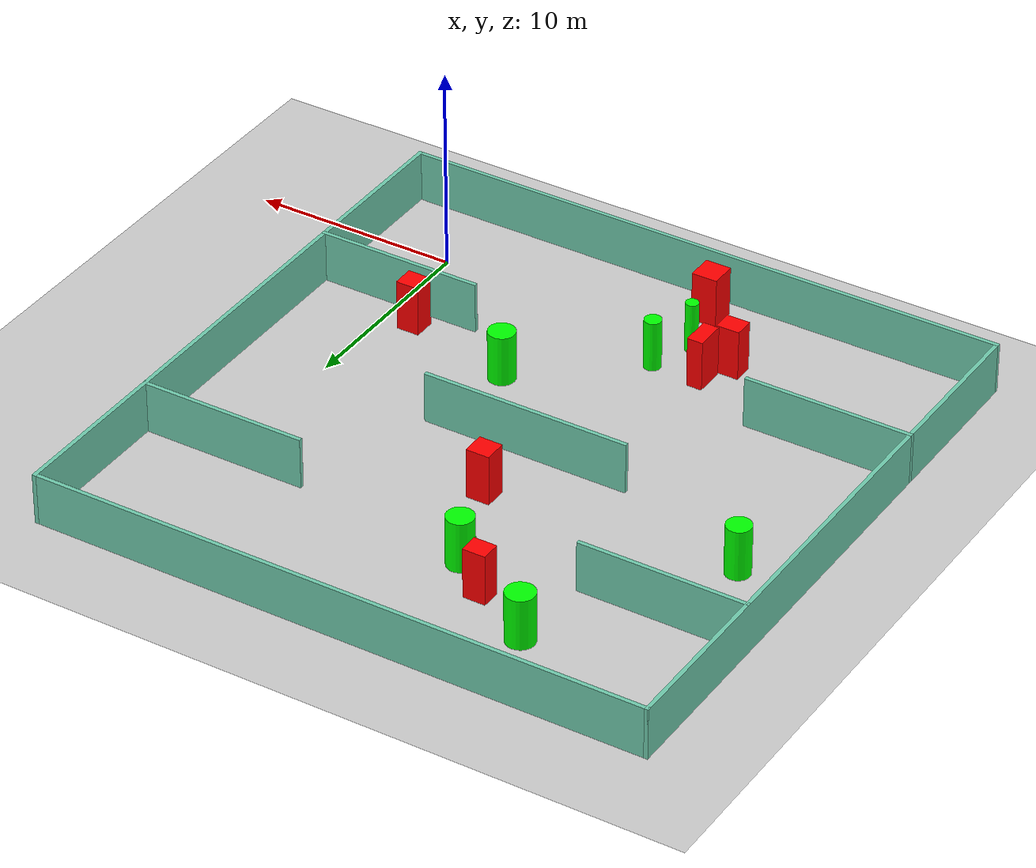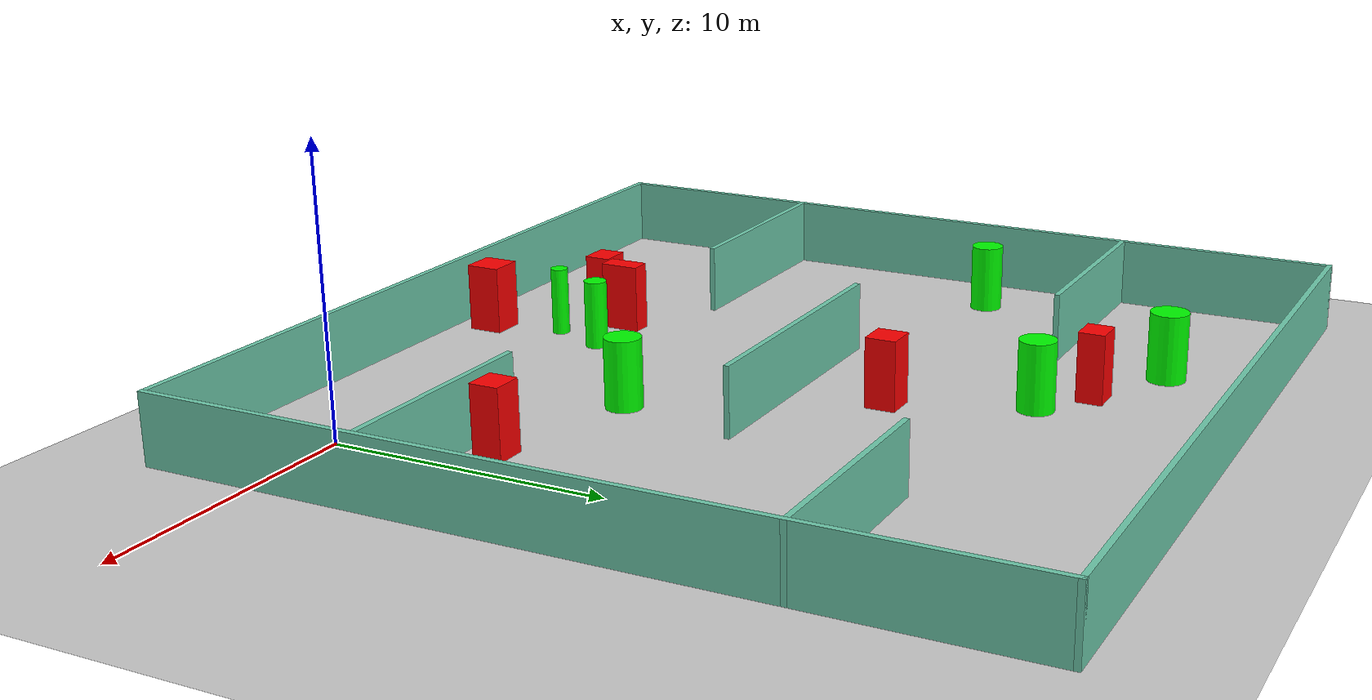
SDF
<sdf version="1.7">
 <world name="default">
  <light name="sun" type="directional">
   <pose>0 0 10 0 -0 0</pose>
   <diffuse>0.8 0.8 0.8 1</diffuse>
   <specular>0.2 0.2 0.2 1</specular>
   <attenuation>
    <range>1000</range>
    <constant>0.9</constant>
    <linear>0.01</linear>
    <quadratic>0.001</quadratic>
   </attenuation>
   <direction>-0.5 0.1 -0.9</direction>
   <spot><inner_angle>0</inner_angle><outer_angle>0</outer_angle><falloff>0</falloff></spot>
  </light>
  <model name="ground_plane">
   <static>1</static>
   <link name="link">
    <collision name="collision">
     <geometry><plane><normal>0 0 1</normal><size>100 100</size></plane></geometry>
     <surface>
      <contact><collide_bitmask>65535</collide_bitmask></contact>
      <friction><ode><mu>100</mu><mu2>50</mu2></ode></friction>
     </surface>
    </collision>
    <visual name="visual">
     <cast_shadows>0</cast_shadows>
     <geometry><plane><normal>0 0 1</normal><size>100 100</size></plane></geometry>
     <material>
      <script><uri>file://media/materials/scripts/gazebo.material</uri><name>Gazebo/Grey</name></script>
     </material>
    </visual>
   </link>
  </model>
  <gravity>0 0 -9.8</gravity>
  <magnetic_field>6e-06 2.3e-05 -4.2e-05</magnetic_field>
  <atmosphere type="adiabatic"/>
  <physics type="ode">
   <max_step_size>0.001</max_step_size>
   <real_time_factor>1</real_time_factor>
   <real_time_update_rate>1000</real_time_update_rate>
  </physics>
  <scene><ambient>0.4 0.4 0.4 1</ambient><background>0.7 0.7 0.7 1</background><shadows>1</shadows></scene>
  <spherical_coordinates>
   <surface_model>EARTH_WGS84</surface_model>
   <latitude_deg>0</latitude_deg>
   <longitude_deg>0</longitude_deg>
   <elevation>0</elevation>
   <heading_deg>0</heading_deg>
  </spherical_coordinates>
  <model name="my_base_walls">
   <link name="Wall_10">
    <collision name="Wall_10_Collision">
     <geometry><box><size>8.2 0.2 2.5</size></box></geometry>
     <pose>0 0 1.25 0 -0 0</pose>
    </collision>
    <visual name="Wall_10_Visual">
     <pose>0 0 1.25 0 -0 0</pose>
     <geometry><box><size>8.2 0.2 2.5</size></box></geometry>
     <material>
      <script><uri>file://media/materials/scripts/gazebo.material</uri><name>Gazebo/Grey</name></script>
      <ambient>0.435294 0.796078 0.67451 1</ambient>
     </material>
     <meta><layer>0</layer></meta>
    </visual>
    <pose>-11 -7 0 0 -0 0</pose>
   </link>
   <link name="Wall_12">
    <collision name="Wall_12_Collision">
     <geometry><box><size>8.2 0.2 2.5</size></box></geometry>
     <pose>0 0 1.25 0 -0 0</pose>
    </collision>
    <visual name="Wall_12_Visual">
     <pose>0 0 1.25 0 -0 0</pose>
     <geometry><box><size>8.2 0.2 2.5</size></box></geometry>
     <material>
      <script><uri>file://media/materials/scripts/gazebo.material</uri><name>Gazebo/Grey</name></script>
      <ambient>0.435294 0.796078 0.67451 1</ambient>
     </material>
     <meta><layer>0</layer></meta>
    </visual>
    <pose>-11 7 0 0 -0 0</pose>
   </link>
   <link name="Wall_14">
    <collision name="Wall_14_Collision">
     <geometry><box><size>8.2 0.2 2.5</size></box></geometry>
     <pose>0 0 1.25 0 -0 0</pose>
    </collision>
    <visual name="Wall_14_Visual">
     <pose>0 0 1.25 0 -0 0</pose>
     <geometry><box><size>8.2 0.2 2.5</size></box></geometry>
     <material>
      <script><uri>file://media/materials/scripts/gazebo.material</uri><name>Gazebo/Grey</name></script>
      <ambient>0.435294 0.796078 0.67451 1</ambient>
     </material>
     <meta><layer>0</layer></meta>
    </visual>
    <pose>11 7 0 0 -0 3.14159</pose>
   </link>
   <link name="Wall_16">
    <collision name="Wall_16_Collision">
     <geometry><box><size>10.2 0.2 2.5</size></box></geometry>
     <pose>0 0 1.25 0 -0 0</pose>
    </collision>
    <visual name="Wall_16_Visual">
     <pose>0 0 1.25 0 -0 0</pose>
     <geometry><box><size>10.2 0.2 2.5</size></box></geometry>
     <material>
      <script><uri>file://media/materials/scripts/gazebo.material</uri><name>Gazebo/Grey</name></script>
      <ambient>0.435294 0.796078 0.67451 1</ambient>
     </material>
     <meta><layer>0</layer></meta>
    </visual>
    <pose>0 0 0 0 -0 3.14159</pose>
   </link>
   <link name="Wall_2">
    <collision name="Wall_2_Collision">
     <geometry><box><size>30.2 0.2 2.5</size></box></geometry>
     <pose>0 0 1.25 0 -0 0</pose>
    </collision>
    <visual name="Wall_2_Visual">
     <pose>0 0 1.25 0 -0 0</pose>
     <geometry><box><size>30.2 0.2 2.5</size></box></geometry>
     <material>
      <script><uri>file://media/materials/scripts/gazebo.material</uri><name>Gazebo/Grey</name></script>
      <ambient>0.435294 0.796078 0.67451 1</ambient>
     </material>
     <meta><layer>0</layer></meta>
    </visual>
    <pose>0 -15 0 0 -0 3.14159</pose>
   </link>
   <link name="Wall_3">
    <collision name="Wall_3_Collision">
     <geometry><box><size>30.2 0.2 2.5</size></box></geometry>
     <pose>0 0 1.25 0 -0 0</pose>
    </collision>
    <visual name="Wall_3_Visual">
     <pose>0 0 1.25 0 -0 0</pose>
     <geometry><box><size>30.2 0.2 2.5</size></box></geometry>
     <material>
      <script><uri>file://media/materials/scripts/gazebo.material</uri><name>Gazebo/Grey</name></script>
      <ambient>0.435294 0.796078 0.67451 1</ambient>
     </material>
     <meta><layer>0</layer></meta>
    </visual>
    <pose>-15 0 0 0 -0 1.5708</pose>
   </link>
   <link name="Wall_4">
    <collision name="Wall_4_Collision">
     <geometry><box><size>30.2 0.2 2.5</size></box></geometry>
     <pose>0 0 1.25 0 -0 0</pose>
    </collision>
    <visual name="Wall_4_Visual">
     <pose>0 0 1.25 0 -0 0</pose>
     <geometry><box><size>30.2 0.2 2.5</size></box></geometry>
     <material>
      <script><uri>file://media/materials/scripts/gazebo.material</uri><name>Gazebo/Grey</name></script>
      <ambient>0.435294 0.796078 0.67451 1</ambient>
     </material>
     <meta><layer>0</layer></meta>
    </visual>
    <pose>0 15 0 0 -0 0</pose>
   </link>
   <link name="Wall_6">
    <collision name="Wall_6_Collision">
     <geometry><box><size>30.2 0.2 2.5</size></box></geometry>
     <pose>0 0 1.25 0 -0 0</pose>
    </collision>
    <visual name="Wall_6_Visual">
     <pose>0 0 1.25 0 -0 0</pose>
     <geometry><box><size>30.2 0.2 2.5</size></box></geometry>
     <material>
      <script><uri>file://media/materials/scripts/gazebo.material</uri><name>Gazebo/Grey</name></script>
      <ambient>0.435294 0.796078 0.67451 1</ambient>
     </material>
     <meta><layer>0</layer></meta>
    </visual>
    <pose>15 0 0 0 -0 1.5708</pose>
   </link>
   <link name="Wall_8">
    <collision name="Wall_8_Collision">
     <geometry><box><size>8.2 0.2 2.5</size></box></geometry>
     <pose>0 0 1.25 0 -0 0</pose>
    </collision>
    <visual name="Wall_8_Visual">
     <pose>0 0 1.25 0 -0 0</pose>
     <geometry><box><size>8.2 0.2 2.5</size></box></geometry>
     <material>
      <script><uri>file://media/materials/scripts/gazebo.material</uri><name>Gazebo/Grey</name></script>
      <ambient>0.435294 0.796078 0.67451 1</ambient>
     </material>
     <meta><layer>0</layer></meta>
    </visual>
    <pose>11 -7 0 0 -0 3.14159</pose>
   </link>
   <static>1</static>
   <pose>-11 11 0 0 -0 0</pose>
  </model>
  <model name="cylinder1">
   <static>1</static>
   <link name="link">
    <inertial>
     <mass>1</mass>
     <inertia><ixx>0.5</ixx><ixy>0</ixy><ixz>0</ixz><iyy>0.5</iyy><iyz>0</iyz><izz>1</izz></inertia>
    </inertial>
    <collision name="collision">
     <geometry><cylinder><radius>0.5917968435866396</radius><length>2.5</length></cylinder></geometry>
    </collision>
    <visual name="visual">
     <geometry><cylinder><radius>0.5917968435866396</radius><length>2.5</length></cylinder></geometry>
     <material>
      <ambient>0 1 0 1</ambient>
      <diffuse>0 1 0 1</diffuse>
      <specular>0.1 0.1 0.1 1</specular>
      <emissive>0 0 0 0</emissive>
     </material>
    </visual>
   </link>
   <pose>-22.999672846870695 13.467769272342512 1.25 0 0 0</pose>
  </model>
  <model name="cylinder2">
   <static>1</static>
   <link name="link">
    <inertial>
     <mass>1</mass>
     <inertia><ixx>0.5</ixx><ixy>0</ixy><ixz>0</ixz><iyy>0.5</iyy><iyz>0</iyz><izz>1</izz></inertia>
    </inertial>
    <collision name="collision">
     <geometry><cylinder><radius>0.4155279375031602</radius><length>2.5</length></cylinder></geometry>
    </collision>
    <visual name="visual">
     <geometry><cylinder><radius>0.4155279375031602</radius><length>2.5</length></cylinder></geometry>
     <material>
      <ambient>0 1 0 1</ambient>
      <diffuse>0 1 0 1</diffuse>
      <specular>0.1 0.1 0.1 1</specular>
      <emissive>0 0 0 0</emissive>
     </material>
    </visual>
   </link>
   <pose>-12.202772202844871 2.2248365550033826 1.25 0 0 0</pose>
  </model>
  <model name="cylinder3">
   <static>1</static>
   <link name="link">
    <inertial>
     <mass>1</mass>
     <inertia><ixx>0.5</ixx><ixy>0</ixy><ixz>0</ixz><iyy>0.5</iyy><iyz>0</iyz><izz>1</izz></inertia>
    </inertial>
    <collision name="collision">
     <geometry><cylinder><radius>0.6914898012141134</radius><length>2.5</length></cylinder></geometry>
    </collision>
    <visual name="visual">
     <geometry><cylinder><radius>0.6914898012141134</radius><length>2.5</length></cylinder></geometry>
     <material>
      <ambient>0 1 0 1</ambient>
      <diffuse>0 1 0 1</diffuse>
      <specular>0.1 0.1 0.1 1</specular>
      <emissive>0 0 0 0</emissive>
     </material>
    </visual>
   </link>
   <pose>-17.70813368758276 22.178064823019326 1.25 0 0 0</pose>
  </model>
  <model name="cylinder4">
   <static>1</static>
   <link name="link">
    <inertial>
     <mass>1</mass>
     <inertia><ixx>0.5</ixx><ixy>0</ixy><ixz>0</ixz><iyy>0.5</iyy><iyz>0</iyz><izz>1</izz></inertia>
    </inertial>
    <collision name="collision">
     <geometry><cylinder><radius>0.6526278514723627</radius><length>2.5</length></cylinder></geometry>
    </collision>
    <visual name="visual">
     <geometry><cylinder><radius>0.6526278514723627</radius><length>2.5</length></cylinder></geometry>
     <material>
      <ambient>0 1 0 1</ambient>
      <diffuse>0 1 0 1</diffuse>
      <specular>0.1 0.1 0.1 1</specular>
      <emissive>0 0 0 0</emissive>
     </material>
    </visual>
   </link>
   <pose>-12.814458069164573 19.05992292271669 1.25 0 0 0</pose>
  </model>
  <model name="cylinder5">
   <static>1</static>
   <link name="link">
    <inertial>
     <mass>1</mass>
     <inertia><ixx>0.5</ixx><ixy>0</ixy><ixz>0</ixz><iyy>0.5</iyy><iyz>0</iyz><izz>1</izz></inertia>
    </inertial>
    <collision name="collision">
     <geometry><cylinder><radius>0.3166141109252674</radius><length>2.5</length></cylinder></geometry>
    </collision>
    <visual name="visual">
     <geometry><cylinder><radius>0.3166141109252674</radius><length>2.5</length></cylinder></geometry>
     <material>
      <ambient>0 1 0 1</ambient>
      <diffuse>0 1 0 1</diffuse>
      <specular>0.1 0.1 0.1 1</specular>
      <emissive>0 0 0 0</emissive>
     </material>
    </visual>
   </link>
   <pose>-13.000565321164192 0.15334404244751854 1.25 0 0 0</pose>
  </model>
  <model name="cylinder6">
   <static>1</static>
   <link name="link">
    <inertial>
     <mass>1</mass>
     <inertia><ixx>0.5</ixx><ixy>0</ixy><ixz>0</ixz><iyy>0.5</iyy><iyz>0</iyz><izz>1</izz></inertia>
    </inertial>
    <collision name="collision">
     <geometry><cylinder><radius>0.6542619994001058</radius><length>2.5</length></cylinder></geometry>
    </collision>
    <visual name="visual">
     <geometry><cylinder><radius>0.6542619994001058</radius><length>2.5</length></cylinder></geometry>
     <material>
      <ambient>0 1 0 1</ambient>
      <diffuse>0 1 0 1</diffuse>
      <specular>0.1 0.1 0.1 1</specular>
      <emissive>0 0 0 0</emissive>
     </material>
    </visual>
   </link>
   <pose>-7.01512965698533 6.503086352183685 1.25 0 0 0</pose>
  </model>
  <model name="box1">
   <static>1</static>
   <link name="link">
    <inertial>
     <mass>1</mass>
     <inertia><ixx>0.083</ixx><ixy>0</ixy><ixz>0</ixz><iyy>0.083</iyy><iyz>0</iyz><izz>0.083</izz></inertia>
    </inertial>
    <collision name="collision">
     <geometry><box><size>1.1286784410552233 0.9757849514904882 2.5</size></box></geometry>
    </collision>
    <visual name="visual">
     <geometry><box><size>1.1286784410552233 0.9757849514904882 2.5</size></box></geometry>
     <material>
      <ambient>1 0 0 1</ambient>
      <diffuse>1 0 0 1</diffuse>
      <specular>0.1 0.1 0.1 1</specular>
      <emissive>0 0 0 0</emissive>
     </material>
    </visual>
    <sensor name="my_contact" type="contact">
     <contact><collision>box_collision</collision><topic>__default_topic__</topic></contact>
    </sensor>
   </link>
   <pose>-15.389417302817769 0.6808376326604408 1.25 0 0 0</pose>
  </model>
  <model name="box2">
   <static>1</static>
   <link name="link">
    <inertial>
     <mass>1</mass>
     <inertia><ixx>0.083</ixx><ixy>0</ixy><ixz>0</ixz><iyy>0.083</iyy><iyz>0</iyz><izz>0.083</izz></inertia>
    </inertial>
    <collision name="collision">
     <geometry><box><size>1.122194723515416 1.0559192048249195 2.5</size></box></geometry>
    </collision>
    <visual name="visual">
     <geometry><box><size>1.122194723515416 1.0559192048249195 2.5</size></box></geometry>
     <material>
      <ambient>1 0 0 1</ambient>
      <diffuse>1 0 0 1</diffuse>
      <specular>0.1 0.1 0.1 1</specular>
      <emissive>0 0 0 0</emissive>
     </material>
    </visual>
    <sensor name="my_contact" type="contact">
     <contact><collision>box_collision</collision><topic>__default_topic__</topic></contact>
    </sensor>
   </link>
   <pose>-1.5083594692192683 5.138581939835834 1.25 0 0 0</pose>
  </model>
  <model name="box3">
   <static>1</static>
   <link name="link">
    <inertial>
     <mass>1</mass>
     <inertia><ixx>0.083</ixx><ixy>0</ixy><ixz>0</ixz><iyy>0.083</iyy><iyz>0</iyz><izz>0.083</izz></inertia>
    </inertial>
    <collision name="collision">
     <geometry><box><size>1.1053098044262528 0.9467531609693658 2.5</size></box></geometry>
    </collision>
    <visual name="visual">
     <geometry><box><size>1.1053098044262528 0.9467531609693658 2.5</size></box></geometry>
     <material>
      <ambient>1 0 0 1</ambient>
      <diffuse>1 0 0 1</diffuse>
      <specular>0.1 0.1 0.1 1</specular>
      <emissive>0 0 0 0</emissive>
     </material>
    </visual>
    <sensor name="my_contact" type="contact">
     <contact><collision>box_collision</collision><topic>__default_topic__</topic></contact>
    </sensor>
   </link>
   <pose>-14.674111507407426 20.486442392039542 1.25 0 0 0</pose>
  </model>
  <model name="box4">
   <static>1</static>
   <link name="link">
    <inertial>
     <mass>1</mass>
     <inertia><ixx>0.083</ixx><ixy>0</ixy><ixz>0</ixz><iyy>0.083</iyy><iyz>0</iyz><izz>0.083</izz></inertia>
    </inertial>
    <collision name="collision">
     <geometry><box><size>0.7609686258962874 1.4511255838028247 2.5</size></box></geometry>
    </collision>
    <visual name="visual">
     <geometry><box><size>0.7609686258962874 1.4511255838028247 2.5</size></box></geometry>
     <material>
      <ambient>1 0 0 1</ambient>
      <diffuse>1 0 0 1</diffuse>
      <specular>0.1 0.1 0.1 1</specular>
      <emissive>0 0 0 0</emissive>
     </material>
    </visual>
    <sensor name="my_contact" type="contact">
     <contact><collision>box_collision</collision><topic>__default_topic__</topic></contact>
    </sensor>
   </link>
   <pose>-14.623733525519825 1.9963670894289898 1.25 0 0 0</pose>
  </model>
  <model name="box5">
   <static>1</static>
   <link name="link">
    <inertial>
     <mass>1</mass>
     <inertia><ixx>0.083</ixx><ixy>0</ixy><ixz>0</ixz><iyy>0.083</iyy><iyz>0</iyz><izz>0.083</izz></inertia>
    </inertial>
    <collision name="collision">
     <geometry><box><size>1.2522696420055017 1.2780704806169534 2.5</size></box></geometry>
    </collision>
    <visual name="visual">
     <geometry><box><size>1.2522696420055017 1.2780704806169534 2.5</size></box></geometry>
     <material>
      <ambient>1 0 0 1</ambient>
      <diffuse>1 0 0 1</diffuse>
      <specular>0.1 0.1 0.1 1</specular>
      <emissive>0 0 0 0</emissive>
     </material>
    </visual>
    <sensor name="my_contact" type="contact">
     <contact><collision>box_collision</collision><topic>__default_topic__</topic></contact>
    </sensor>
   </link>
   <pose>-12.450003672134706 -2.4963533447401014 1.25 0 0 0</pose>
  </model>
  <model name="box6">
   <static>1</static>
   <link name="link">
    <inertial>
     <mass>1</mass>
     <inertia><ixx>0.083</ixx><ixy>0</ixy><ixz>0</ixz><iyy>0.083</iyy><iyz>0</iyz><izz>0.083</izz></inertia>
    </inertial>
    <collision name="collision">
     <geometry><box><size>1.1385647433424904 1.106998256467814 2.5</size></box></geometry>
    </collision>
    <visual name="visual">
     <geometry><box><size>1.1385647433424904 1.106998256467814 2.5</size></box></geometry>
     <material>
      <ambient>1 0 0 1</ambient>
      <diffuse>1 0 0 1</diffuse>
      <specular>0.1 0.1 0.1 1</specular>
      <emissive>0 0 0 0</emissive>
     </material>
    </visual>
    <sensor name="my_contact" type="contact">
     <contact><collision>box_collision</collision><topic>__default_topic__</topic></contact>
    </sensor>
   </link>
   <pose>-11.041973421737062 14.357154203566644 1.25 0 0 0</pose>
  </model>
 </world>
</sdf>
